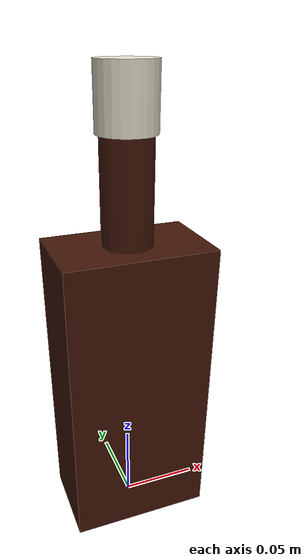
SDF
<?xml version="1.0" ?>
<!-- GENERATED by ros2_ws/src/bartender_gazebo/scripts/make_real_bar_bottles.py.
     Edit that script and re-run it; edits here are overwritten. -->
<sdf version="1.9">
  <model name="ballantines_bottle">
    <link name="link">
      <inertial><pose>0 0 0.1425 0 0 0</pose><mass>1.2</mass><inertia><ixx>0.008730</ixx><iyy>0.008730</iyy><izz>0.001215</izz><ixy>0</ixy><ixz>0</ixz><iyz>0</iyz></inertia></inertial>
      <velocity_decay><linear>0.05</linear><angular>0.30</angular></velocity_decay>
      <visual name="v0"><pose>0 0.0 0.095 0 0 0</pose><geometry><box><size>0.09 0.055 0.19</size></box></geometry><material><ambient>0.075 0.024 0.009 1</ambient><diffuse>0.25 0.08 0.03 1</diffuse><specular>0.6 0.6 0.6 1</specular></material></visual>
      <collision name="c0"><pose>0 0 0.095 0 0 0</pose><geometry><box><size>0.09 0.055 0.19</size></box></geometry><surface><friction><ode><mu>0.9</mu><mu2>0.9</mu2></ode></friction></surface></collision>
      <visual name="v1"><pose>0 0.0295 0.08 0 0 0</pose><geometry><box><size>0.065 0.004 0.09</size></box></geometry><material><ambient>0.285 0.282 0.27 1</ambient><diffuse>0.95 0.94 0.9 1</diffuse><specular>0.6 0.6 0.6 1</specular></material></visual>
      <visual name="v2"><pose>0 0.0 0.22 0 0 0</pose><geometry><cylinder><radius>0.015</radius><length>0.06</length></cylinder></geometry><material><ambient>0.075 0.024 0.009 1</ambient><diffuse>0.25 0.08 0.03 1</diffuse><specular>0.6 0.6 0.6 1</specular></material></visual>
      <collision name="c2"><pose>0 0 0.22 0 0 0</pose><geometry><cylinder><radius>0.015</radius><length>0.06</length></cylinder></geometry><surface><friction><ode><mu>0.9</mu><mu2>0.9</mu2></ode></friction></surface></collision>
      <visual name="v3"><pose>0 0.0 0.2675 0 0 0</pose><geometry><cylinder><radius>0.017</radius><length>0.035</length></cylinder></geometry><material><ambient>0.27 0.264 0.24 1</ambient><diffuse>0.9 0.88 0.8 1</diffuse><specular>0.6 0.6 0.6 1</specular></material></visual>
    </link>
  </model>
</sdf>
